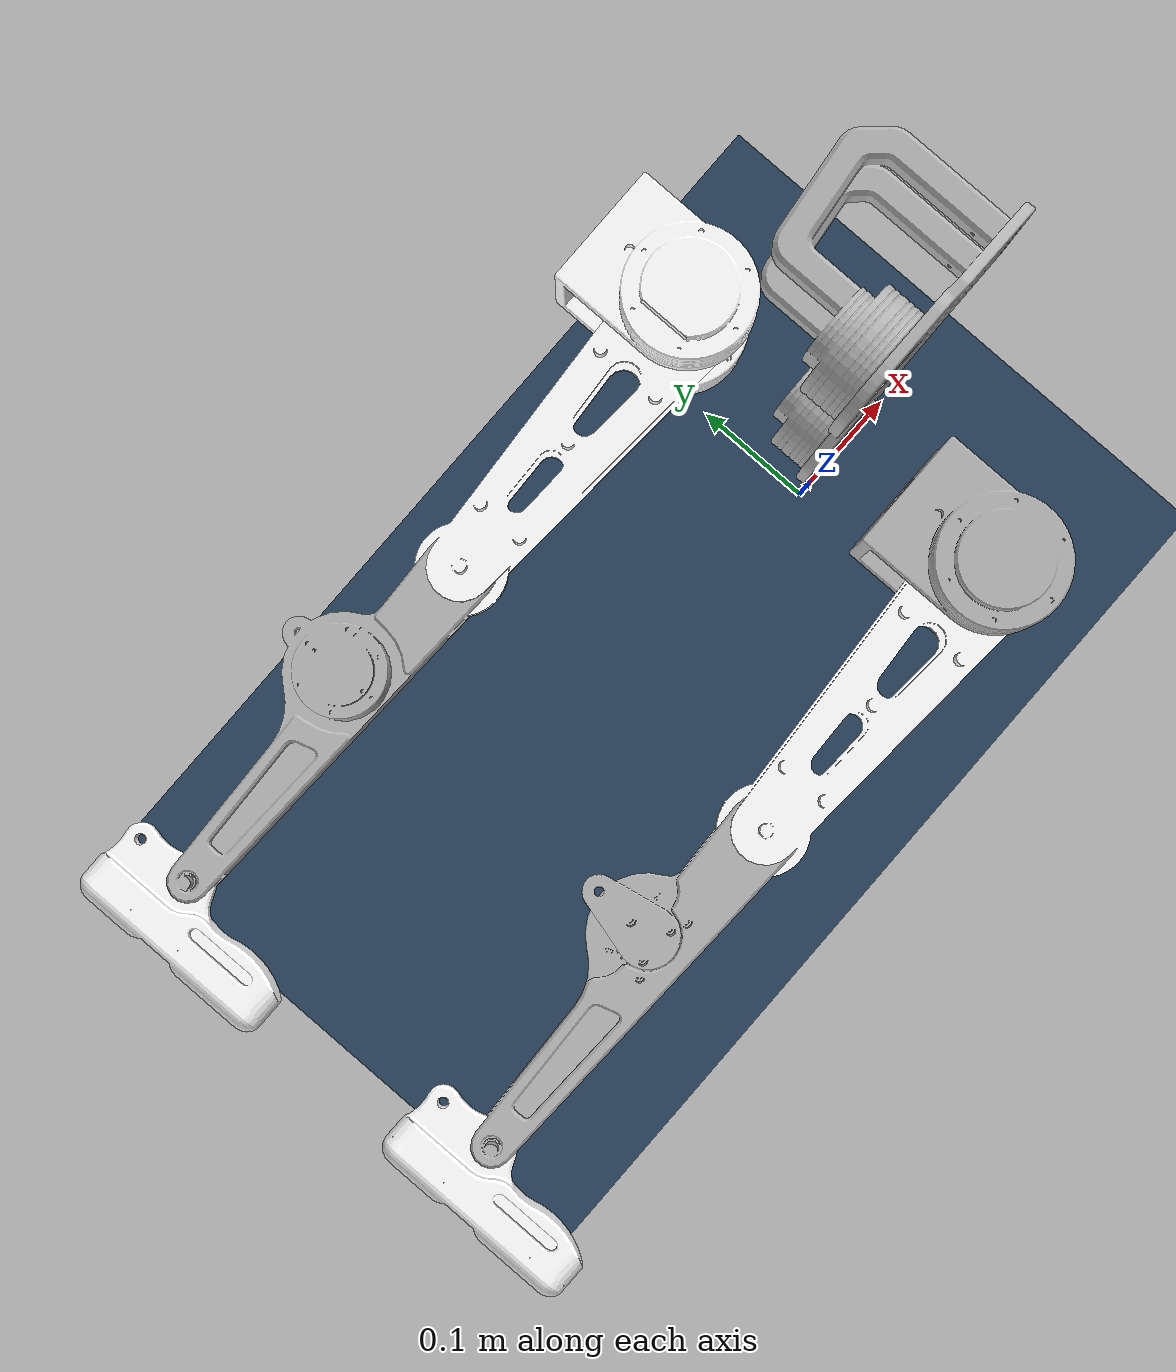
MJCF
<mujoco model="AS2.SLDASM">
  <compiler angle="radian" meshdir="assets" texturedir="assets"/>

  <size njmax="500" nconmax="100" />
  <option cone="elliptic" impratio="10"/>

  <default>
    <joint damping="0.8" armature="0.045" frictionloss="0.03"/>
    <position kp="10.1" kv="3" ctrlrange="-3.141592 3.141592" forcerange="-9 9"/>
  </default>

  <asset>
    <mesh name="base_link" file="base_link.STL"/>
    <mesh name="HR" file="HR.STL"/>
    <mesh name="TR" file="TR.STL"/>
    <mesh name="SR" file="SR.STL"/> <!--changed-->
    <mesh name="FR" file="FR.STL"/> <!--changed-->
    <mesh name="HL" file="HL.STL"/>
    <mesh name="TL" file="TL.STL"/>
    <mesh name="SL" file="SL.STL"/> <!--changed-->
    <mesh name="FL" file="FL.STL"/> <!--changed-->

    <texture type="2d" name="trunk_A1" file="trunk_A1.png"/>
    <material name="carbonfibre" texture="trunk_A1" specular="0" shininess="0.25"/>

    <material name="dark" specular="0" shininess="0.25" rgba="0.2 0.2 0.2 1"/>
    <texture name="grid" type="2d" builtin="checker" width="512" height="512" rgb1=".1 .2 .3" rgb2=".2 .3 .4"/>
    <material name="grid" texture="grid" texrepeat="1 1" texuniform="true" reflectance=".2"/>
  </asset>

  <visual>
	  <headlight diffuse="0.6 0.6 0.6" ambient="0.3 0.3 0.3" specular="0 0 0"/>
	  <global azimuth="-90"/>
    <scale forcewidth="0.035" contactwidth="0.1" contactheight="0.04" com="0.2" />
    <rgba com="0.502 1 0 0.5" contactpoint="1 1 0.6 0.4" contactforce="0.98 0.4 0.4 0.7" />
  </visual>

  <statistic extent="1" center="0 0 .3"/>

  <worldbody>
    <light pos="0 0 1.5" dir="0 0 -1" diffuse="0.5 0.5 0.5" specular="0.3 0.3 0.3" directional="true" castshadow="false"/>
    <geom type="plane" size="10 10 .01" material="grid"/>
    <body name="pelvis" pos = "0 0 .51" quat = "0 1 0 1">
      <site name="head" rgba="1 0 0 1" group="5"/>
      <freejoint/>
      <geom type="mesh" rgba="0.69804 0.69804 0.69804 1" mesh="base_link"/>
      <site name="torso"/>
      <body name="HR" pos="0.083531 -0.116 -0.043283">
        <inertial pos="-0.0066825 1.9205e-06 -7.1654e-09" quat="0.504841 0.495267 0.504695 0.495105" mass="0.80395" diaginertia="0.000666581 0.000554479 0.00050994"/>
        <joint name="HR" pos="0 0 0" axis="1 0 0" limited="false"/>
        <geom type="mesh" rgba="1 1 1 1" mesh="HR"/>
        <body name="TR">
          <inertial pos="0 -0.0116239 -0.0465667" quat="0.707107 0 0 0.707107" mass="0.119078" diaginertia="0.000301042 0.000269732 3.65386e-05"/>
          <joint name="TR" pos="0 0 0" axis="0 1 0" limited="false"/>
          <geom type="mesh" rgba="1 1 1 1" mesh="TR"/>
          <body name="SR" pos="0 0 -0.2"> <!--changed-->
            <inertial pos="-0.00748581 -0.00950841 -0.0991664" quat="0.683805 -0.00359576 -0.00291891 0.72965" mass="0.364976" diaginertia="0.000771919 0.000746321 0.000116946"/>
            <joint name="SR" pos="0 0 0" axis="0 1 0" limited="false"/>
            <geom type="mesh" rgba="0.698039 0.698039 0.698039 1" mesh="SR"/>
            <body name="FR" pos="0 0 -0.24">
              <inertial pos="0.0144253 0.00342454 -0.0196339" quat="0.485379 0.514207 0.514103 0.485485" mass="0.0856582" diaginertia="0.000130611 0.000126943 1.33816e-05"/>
              <joint name="FR" pos="0 0 0" axis="0 -1 0" limited="false"/>
              <geom type="mesh" rgba="1 1 1 1" mesh="FR"/>
              <site name="right_foot" rgba="1 0 0 1" pos="0.025 0 -0.025" group="5"/>
            </body>
          </body>
        </body>
      </body>
      <body name="HL" pos="0.083531 0.116 -0.043283">
        <inertial pos="-0.00668249 1.92053e-06 -7.16496e-09" quat="0.504841 0.495267 0.504695 0.495105" mass="0.803952" diaginertia="0.000666584 0.000554476 0.00050994"/>
        <joint name="HL" pos="0 0 0" axis="1 0 0" limited="false"/>
        <geom type="mesh" rgba="0.698039 0.698039 0.698039 1" mesh="HL"/>
        <body name="TL">
          <inertial pos="0 0.0116239 -0.0465667" quat="0.707107 0 0 0.707107" mass="0.119078" diaginertia="0.000301042 0.000269732 3.65386e-05"/>
          <joint name="TL" pos="0 0 0" axis="0 1 0" limited="false"/>
          <geom type="mesh" rgba="1 1 1 1" mesh="TL"/>
          <body name="SL" pos="0 0 -0.2"> <!--changed-->
            <inertial pos="-0.00748581 0.00950841 -0.0991664" quat="0.72965 -0.00291888 -0.00359575 0.683805" mass="0.364976" diaginertia="0.000771919 0.000746321 0.000116946"/>
            <joint name="SL" pos="0 0 0" axis="0 1 0" limited="false"/>
            <geom type="mesh" rgba="0.698039 0.698039 0.698039 1" mesh="SL"/>
            <body name="FL" pos="0 0 -0.24">
              <inertial pos="0.0144253 -0.00342546 -0.0196339" quat="0.485379 0.514207 0.514103 0.485485" mass="0.0856582" diaginertia="0.000130611 0.000126943 1.33816e-05"/>
              <joint name="FL" pos="0 0 0" axis="0 -1 0" limited="false"/>
              <geom type="mesh" rgba="1 1 1 1" mesh="FL"/>
              <site name="left_foot" rgba="1 0 0 1" pos="0.025 0 -0.025" group="5"/>
            </body>
          </body>
        </body>
      </body>
    </body>
    <light pos="0 0 10" dir="0 0 -1" directional="true" diffuse="0.8 0.8 0.8" />
  </worldbody>
  <actuator>
    <position name="hipr_act" joint="HR"/>
    <position name="thighr_act" joint="TR"/>
    <position name="shinr_act" joint="SR"/>
    <position name="footr_act" joint="FR"/>
    <position name="hipl_act" joint="HL"/>
    <position name="thighl_act" joint="TL"/>
    <position name="shinl_act" joint="SL"/>
    <position name="footl_act" joint="FL"/>
  </actuator>
</mujoco>
